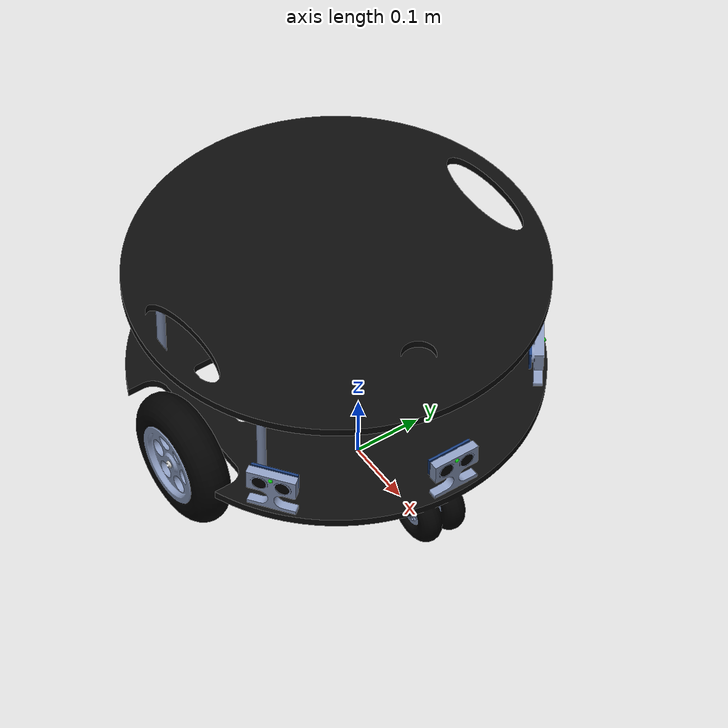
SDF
<?xml version='1.0'?>
<sdf version='1.6'>
  <model name='arlo_mejorado_precision_llantas'>

<!--    The base of the arlo robot base: lower and upper decks, and caster wheels (fixed)   -->
    <link name='link_base'>
      <inertial>
        <mass>10</mass>
        <inertia>
          <ixx>0.191043</ixx>
          <ixy>0</ixy>
          <ixz>0</ixz>
          <iyy>0.191043</iyy>
          <iyz>0</iyz>
          <izz>0.331905</izz>
        </inertia>
        <pose frame=''>0 0 0 0 0 0</pose>
      </inertial>
      <pose frame=''>-0.055242 0 0.153337 0 0 0</pose>
      <gravity>1</gravity>
      <self_collide>0</self_collide>
      <kinematic>0</kinematic>
      <enable_wind>0</enable_wind>
      <visual name='visual'>
        <pose frame=''>0 0 0 0 -0 0</pose>
        <geometry>
          <mesh>
            <uri>/home/antonio/catkin_ws/src/arlo_mejorado_precision_llantas/arlo_mejorado/models/arlodrive/meshes/arlo_base_altura_ok.dae</uri>
            <scale>1 1 1</scale>
          </mesh>
        </geometry>
        <transparency>0</transparency>
        <cast_shadows>1</cast_shadows>
      </visual>
      <collision name='collision'>
        <laser_retro>0</laser_retro>
        <max_contacts>10</max_contacts>
        <pose frame=''>0 0 0.070880 0 -0 0</pose>
        <geometry>
          <cylinder>
            <radius>0.288056</radius>
            <length>0.194</length>
          </cylinder>
        </geometry>
        <surface>
          <friction>
            <ode>
              <mu>1</mu>
              <mu2>1</mu2>
              <fdir1>0 0 0</fdir1>
              <slip1>0</slip1>
              <slip2>0</slip2>
            </ode>
            <torsional>
              <coefficient>1</coefficient>
              <patch_radius>0</patch_radius>
              <surface_radius>0</surface_radius>
              <use_patch_radius>1</use_patch_radius>
              <ode>
                <slip>0</slip>
              </ode>
            </torsional>
          </friction>
          <bounce>
            <restitution_coefficient>0</restitution_coefficient>
            <threshold>1e+06</threshold>
          </bounce>
          <contact>
            <collide_without_contact>0</collide_without_contact>
            <collide_without_contact_bitmask>1</collide_without_contact_bitmask>
            <collide_bitmask>1</collide_bitmask>
            <ode>
              <soft_cfm>0</soft_cfm>
              <soft_erp>0.2</soft_erp>
              <kp>1e+13</kp>
              <kd>1</kd>
              <max_vel>0.01</max_vel>
              <min_depth>0</min_depth>
            </ode>
            <bullet>
              <split_impulse>1</split_impulse>
              <split_impulse_penetration_threshold>-0.01</split_impulse_penetration_threshold>
              <soft_cfm>0</soft_cfm>
              <soft_erp>0.2</soft_erp>
              <kp>1e+13</kp>
              <kd>1</kd>
            </bullet>
          </contact>
        </surface>
      </collision>
    </link>

<!--    The caster wheel: an invisible sphere to simulate de real caster wheel. -->
    <link name='link_caster'>
      <inertial>
        <mass>0.8</mass>
        <inertia>
          <ixx>0.00043452</ixx>
          <ixy>0</ixy>
          <ixz>0</ixz>
          <iyy>0.00043452</iyy>
          <iyz>0</iyz>
          <izz>0.00043452</izz>
        </inertia>
        <pose frame=''>0 0 0 0 -0 0</pose>
      </inertial>
      <pose frame=''>0.167839 0 0.05 0 -0 0</pose>
      <gravity>1</gravity>
      <self_collide>0</self_collide>
      <kinematic>0</kinematic>
      <enable_wind>0</enable_wind>
      <visual name='visual'>
        <pose frame=''>0 0 0 0 0 0</pose>
        <geometry>
          <sphere>
            <radius>0.0466108</radius>
          </sphere>
        </geometry>
<!--        This makes the sphere invisible -->
        <transparency>1</transparency>
        <cast_shadows>1</cast_shadows>
      </visual>
      <collision name='collision'>
        <laser_retro>0</laser_retro>
        <max_contacts>10</max_contacts>
        <pose frame=''>0 0 0 0 -0 0</pose>
        <geometry>
          <sphere>
            <radius>0.046611</radius>
          </sphere>
        </geometry>
        <surface>
          <friction>
            <ode>
              <mu>1</mu>
              <mu2>1</mu2>
              <fdir1>0 0 0</fdir1>
              <slip1>0</slip1>
              <slip2>0</slip2>
            </ode>
            <torsional>
              <coefficient>1</coefficient>
              <patch_radius>0</patch_radius>
              <surface_radius>0</surface_radius>
              <use_patch_radius>1</use_patch_radius>
              <ode>
                <slip>0</slip>
              </ode>
            </torsional>
          </friction>
          <bounce>
            <restitution_coefficient>0</restitution_coefficient>
            <threshold>1e+06</threshold>
          </bounce>
          <contact>
            <collide_without_contact>0</collide_without_contact>
            <collide_without_contact_bitmask>1</collide_without_contact_bitmask>
            <collide_bitmask>1</collide_bitmask>
            <ode>
              <soft_cfm>0</soft_cfm>
              <soft_erp>0.2</soft_erp>
              <kp>1e+13</kp>
              <kd>1</kd>
              <max_vel>0.01</max_vel>
              <min_depth>0</min_depth>
            </ode>
            <bullet>
              <split_impulse>1</split_impulse>
              <split_impulse_penetration_threshold>-0.01</split_impulse_penetration_threshold>
              <soft_cfm>0</soft_cfm>
              <soft_erp>0.2</soft_erp>
              <kp>1e+13</kp>
              <kd>1</kd>
            </bullet>
          </contact>
        </surface>
      </collision>
    </link>

<!--    The back caster wheel: an invisible sphere to simulate de real caster wheel. -->
    <link name='link_caster_back'>
      <inertial>
        <mass>0.8</mass>
        <inertia>
          <ixx>0.00043452</ixx>
          <ixy>0</ixy>
          <ixz>0</ixz>
          <iyy>0.00043452</iyy>
          <iyz>0</iyz>
          <izz>0.00043452</izz>
        </inertia>
        <pose frame=''>0 0 0 0 -0 0</pose>
      </inertial>
      <pose frame=''>-0.278 0 0.05 0 -0 0</pose>
      <gravity>1</gravity>
      <self_collide>0</self_collide>
      <kinematic>0</kinematic>
      <enable_wind>0</enable_wind>
      <visual name='visual'>
        <pose frame=''>0 0 0 0 0 0</pose>
        <geometry>
          <sphere>
            <radius>0.0466108</radius>
          </sphere>
        </geometry>
<!--        This makes the sphere invisible -->
        <transparency>1</transparency>
        <cast_shadows>1</cast_shadows>
      </visual>
      <collision name='collision'>
        <laser_retro>0</laser_retro>
        <max_contacts>10</max_contacts>
        <pose frame=''>0 0 0 0 -0 0</pose>
        <geometry>
          <sphere>
            <radius>0.046611</radius>
          </sphere>
        </geometry>
        <surface>
          <friction>
            <ode>
              <mu>1</mu>
              <mu2>1</mu2>
              <fdir1>0 0 0</fdir1>
              <slip1>0</slip1>
              <slip2>0</slip2>
            </ode>
            <torsional>
              <coefficient>1</coefficient>
              <patch_radius>0</patch_radius>
              <surface_radius>0</surface_radius>
              <use_patch_radius>1</use_patch_radius>
              <ode>
                <slip>0</slip>
              </ode>
            </torsional>
          </friction>
          <bounce>
            <restitution_coefficient>0</restitution_coefficient>
            <threshold>1e+06</threshold>
          </bounce>
          <contact>
            <collide_without_contact>0</collide_without_contact>
            <collide_without_contact_bitmask>1</collide_without_contact_bitmask>
            <collide_bitmask>1</collide_bitmask>
            <ode>
              <soft_cfm>0</soft_cfm>
              <soft_erp>0.2</soft_erp>
              <kp>1e+13</kp>
              <kd>1</kd>
              <max_vel>0.01</max_vel>
              <min_depth>0</min_depth>
            </ode>
            <bullet>
              <split_impulse>1</split_impulse>
              <split_impulse_penetration_threshold>-0.01</split_impulse_penetration_threshold>
              <soft_cfm>0</soft_cfm>
              <soft_erp>0.2</soft_erp>
              <kp>1e+13</kp>
              <kd>1</kd>
            </bullet>
          </contact>
        </surface>
      </collision>
    </link>

<!--    The left wheel of the base-->
    <link name='link_wheel_left'>
      <inertial>
        <mass>1</mass>
        <inertia>
          <ixx>0.166667</ixx>
          <ixy>0</ixy>
          <ixz>0</ixz>
          <iyy>0.166667</iyy>
          <iyz>0</iyz>
          <izz>0.166667</izz>
        </inertia>
        <pose frame=''>0 0 0 0 -0 0</pose>
      </inertial>
      <pose frame=''>-0.053 0.251767 0.0978 0 -0 0</pose>
      <gravity>1</gravity>
      <self_collide>0</self_collide>
      <kinematic>0</kinematic>
      <enable_wind>0</enable_wind>
      <visual name='visual'>
        <pose frame=''>0 0 0 0 -0 0</pose>
        <geometry>
          <mesh>
            <uri>/home/antonio/catkin_ws/src/arlo_mejorado_precision_llantas/arlo_mejorado/models/arlodrive/meshes/arlo_wheel_mejorado.dae</uri>
            <scale>1 1 1</scale>
          </mesh>
        </geometry>
        <transparency>0</transparency>
        <cast_shadows>1</cast_shadows>
      </visual>
      <collision name='collision'>
        <laser_retro>0</laser_retro>
        <max_contacts>10</max_contacts>
        <pose frame=''>0 0 0 0 -0 0</pose>
        <geometry>
          <mesh>
            <uri>/home/antonio/catkin_ws/src/arlo_mejorado_precision_llantas/arlo_mejorado/models/arlodrive/meshes/arlo_wheel_mejorado.dae</uri>
            <scale>1 1 1</scale>
          </mesh>
        </geometry>
        <surface>
          <friction>
            <ode>
              <mu>1</mu>
              <mu2>1</mu2>
              <fdir1>0 0 0</fdir1>
              <slip1>0</slip1>
              <slip2>0</slip2>
            </ode>
            <torsional>
              <coefficient>1</coefficient>
              <patch_radius>0</patch_radius>
              <surface_radius>0</surface_radius>
              <use_patch_radius>1</use_patch_radius>
              <ode>
                <slip>0</slip>
              </ode>
            </torsional>
          </friction>
          <bounce>
            <restitution_coefficient>0</restitution_coefficient>
            <threshold>1e+06</threshold>
          </bounce>
          <contact>
            <collide_without_contact>0</collide_without_contact>
            <collide_without_contact_bitmask>1</collide_without_contact_bitmask>
            <collide_bitmask>1</collide_bitmask>
            <ode>
              <soft_cfm>0</soft_cfm>
              <soft_erp>0.2</soft_erp>
              <kp>1e+13</kp>
              <kd>1</kd>
              <max_vel>0.01</max_vel>
              <min_depth>0</min_depth>
            </ode>
            <bullet>
              <split_impulse>1</split_impulse>
              <split_impulse_penetration_threshold>-0.01</split_impulse_penetration_threshold>
              <soft_cfm>0</soft_cfm>
              <soft_erp>0.2</soft_erp>
              <kp>1e+13</kp>
              <kd>1</kd>
            </bullet>
          </contact>
        </surface>
      </collision>
    </link>

<!--    The right wheel of the base -->
    <link name='link_wheel_right'>
      <inertial>
        <mass>1</mass>
        <inertia>
          <ixx>0.166667</ixx>
          <ixy>0</ixy>
          <ixz>0</ixz>
          <iyy>0.166667</iyy>
          <iyz>0</iyz>
          <izz>0.166667</izz>
        </inertia>
        <pose frame=''>0 0 0 0 -0 0</pose>
      </inertial>
      <pose frame=''>-0.053 -0.251767 0.0978 0 0 -3.13728</pose>
      <gravity>1</gravity>
      <self_collide>0</self_collide>
      <kinematic>0</kinematic>
      <enable_wind>0</enable_wind>
      <visual name='visual'>
        <pose frame=''>0 0 0 0 -0 0</pose>
        <geometry>
          <mesh>
            <uri>/home/antonio/catkin_ws/src/arlo_mejorado_precision_llantas/arlo_mejorado/models/arlodrive/meshes/arlo_wheel_mejorado.dae</uri>
            <scale>1 1 1</scale>
          </mesh>
        </geometry>
        <transparency>0</transparency>
        <cast_shadows>1</cast_shadows>
        <material>
          <shader type='pixel'/>
          <emissive>0 0 0 1</emissive>
        </material>
      </visual>
      <collision name='collision'>
        <laser_retro>0</laser_retro>
        <max_contacts>10</max_contacts>
        <pose frame=''>0 0 0 0 -0 0</pose>
        <geometry>
          <mesh>
            <uri>/home/antonio/catkin_ws/src/arlo_mejorado_precision_llantas/arlo_mejorado/models/arlodrive/meshes/arlo_wheel_mejorado.dae</uri>
            <scale>1 1 1</scale>
          </mesh>
        </geometry>
        <surface>
          <friction>
            <ode>
              <mu>1</mu>
              <mu2>1</mu2>
              <fdir1>0 0 0</fdir1>
              <slip1>0</slip1>
              <slip2>0</slip2>
            </ode>
            <torsional>
              <coefficient>1</coefficient>
              <patch_radius>0</patch_radius>
              <surface_radius>0</surface_radius>
              <use_patch_radius>1</use_patch_radius>
              <ode>
                <slip>0</slip>
              </ode>
            </torsional>
          </friction>
          <bounce>
            <restitution_coefficient>0</restitution_coefficient>
            <threshold>1e+06</threshold>
          </bounce>
          <contact>
            <collide_without_contact>0</collide_without_contact>
            <collide_without_contact_bitmask>1</collide_without_contact_bitmask>
            <collide_bitmask>1</collide_bitmask>
            <ode>
              <soft_cfm>0</soft_cfm>
              <soft_erp>0.2</soft_erp>
              <kp>1e+13</kp>
              <kd>1</kd>
              <max_vel>0.01</max_vel>
              <min_depth>0</min_depth>
            </ode>
            <bullet>
              <split_impulse>1</split_impulse>
              <split_impulse_penetration_threshold>-0.01</split_impulse_penetration_threshold>
              <soft_cfm>0</soft_cfm>
              <soft_erp>0.2</soft_erp>
              <kp>1e+13</kp>
              <kd>1</kd>
            </bullet>
          </contact>
        </surface>
      </collision>
    </link>

<!--    The three PING))) ultrasonic distance sensors (these are fixed with with a JOINT. -->
    <link name='link_sensor_center'>
      <gravity>0</gravity>
      <inertial>
        <mass>0.01</mass>
      </inertial>
      <pose frame=''>0.218715 0 0.17346 0 0 0</pose>
      <sensor name='head_hokuyo_sensor' type='ray'>
        <pose frame=''>0 0 0.0125 3.14159 0 0</pose>
        <visualize>0</visualize>
        <update_rate>30</update_rate>
        <ray>
          <noise>
            <type>gaussian</type>
            <mean>0</mean>
            <stddev>0.001</stddev>
          </noise>
          <scan>
            <horizontal>
              <samples>32</samples>
              <resolution>1</resolution>
              <min_angle>-0.4</min_angle>
              <max_angle>0.4</max_angle>
            </horizontal>
            <vertical>
              <samples>1</samples>
              <min_angle>0</min_angle>
              <max_angle>0</max_angle>
            </vertical>
          </scan>
          <range>
            <min>0.05</min>
            <max>3</max>
            <resolution>0.02</resolution>
          </range>
        </ray>
        <plugin name="gazebo_ros_head_hokuyo_controller" filename="libgazebo_ros_laser.so">
           <topicName>/arlo/laser/scan_center</topicName>
           <frameName>link_sensor_center</frameName>
        </plugin>
      </sensor>
      <visual name='visual'>
        <pose frame=''>0 0 0 0 -0 0</pose>
        <geometry>
          <mesh>
            <uri>/home/antonio/catkin_ws/src/arlo_mejorado_precision_llantas/arlo_mejorado/models/arlodrive/meshes/arlo_sensor.dae</uri>
            <scale>1 1 1</scale>
          </mesh>
        </geometry>
      </visual>
      <collision name='collision'>
        <pose frame=''>0 0 0 0 0 0</pose>
        <geometry>
          <mesh>
            <uri>/home/antonio/catkin_ws/src/arlo_mejorado_precision_llantas/arlo_mejorado/models/arlodrive/meshes/arlo_sensor.dae</uri>
            <scale>1 1 1</scale>
          </mesh>
        </geometry>
      </collision>
    </link>

    <link name='link_sensor_back'>
      <gravity>0</gravity>
      <inertial>
        <mass>0.01</mass>
      </inertial>
      <pose frame=''>-0.325 0 0.17346 0 0 3.14159</pose>
      <sensor name='head_hokuyo_sensor' type='ray'>
        <pose frame=''>0 0 0.0125 3.14159 0 0</pose>
        <visualize>0</visualize>
        <update_rate>30</update_rate>
        <ray>
          <noise>
            <type>gaussian</type>
            <mean>0</mean>
            <stddev>0.001</stddev>
          </noise>
          <scan>
            <horizontal>
              <samples>32</samples>
              <resolution>1</resolution>
              <min_angle>-0.4</min_angle>
              <max_angle>0.4</max_angle>
            </horizontal>
            <vertical>
              <samples>1</samples>
              <min_angle>0</min_angle>
              <max_angle>0</max_angle>
            </vertical>
          </scan>
          <range>
            <min>0.05</min>
            <max>3</max>
            <resolution>0.02</resolution>
          </range>
        </ray>
        <plugin name="gazebo_ros_head_hokuyo_controller" filename="libgazebo_ros_laser.so">
           <topicName>/arlo/laser/scan_back</topicName>
           <frameName>link_sensor_back</frameName>
        </plugin>
      </sensor>
      <visual name='visual'>
        <pose frame=''>0 0 0 0 -0 0</pose>
        <geometry>
          <mesh>
            <uri>/home/antonio/catkin_ws/src/arlo_mejorado_precision_llantas/arlo_mejorado/models/arlodrive/meshes/arlo_sensor.dae</uri>
            <scale>1 1 1</scale>
          </mesh>
        </geometry>
      </visual>
      <collision name='collision'>
        <pose frame=''>0 0 0 0 0 0</pose>
        <geometry>
          <mesh>
            <uri>/home/antonio/catkin_ws/src/arlo_mejorado_precision_llantas/arlo_mejorado/models/arlodrive/meshes/arlo_sensor.dae</uri>
            <scale>1 1 1</scale>
          </mesh>
        </geometry>
      </collision>
    </link>

    <link name='link_sensor_right'>
      <gravity>0</gravity>
      <inertial>
        <mass>0.01</mass>
      </inertial>
      <pose frame=''>0.113899 -0.214883 0.17346 0 0 -0.927292</pose>
      <sensor name='head_hokuyo_sensor' type='ray'>
        <pose frame=''>0 0 0.0125 3.14159 0 0</pose>
        <visualize>0</visualize>
        <update_rate>30</update_rate>
        <ray>
          <noise>
            <type>gaussian</type>
            <mean>0</mean>
            <stddev>0.001</stddev>
          </noise>
          <scan>
            <horizontal>
              <samples>32</samples>
              <resolution>1</resolution>
              <min_angle>-0.4</min_angle>
              <max_angle>0.4</max_angle>
            </horizontal>
            <vertical>
              <samples>1</samples>
              <min_angle>0</min_angle>
              <max_angle>0</max_angle>
            </vertical>
          </scan>
          <range>
            <min>0.05</min>
            <max>3</max>
            <resolution>0.02</resolution>
          </range>
        </ray>
        <plugin name="gazebo_ros_head_hokuyo_controller" filename="libgazebo_ros_laser.so">
           <topicName>/arlo/laser/scan_right</topicName>
           <frameName>link_sensor_right</frameName>
        </plugin>
      </sensor>
      <visual name='visual'>
        <pose frame=''>0 0 0 0 0 0</pose>
        <geometry>
          <mesh>
            <uri>/home/antonio/catkin_ws/src/arlo_mejorado_precision_llantas/arlo_mejorado/models/arlodrive/meshes/arlo_sensor.dae</uri>
            <scale>1 1 1</scale>
          </mesh>
        </geometry>
      </visual>
      <collision name='collision'>
        <pose frame=''>0 0 0 0 0 0</pose>
        <geometry>
          <mesh>
            <uri>/home/antonio/catkin_ws/src/arlo_mejorado_precision_llantas/arlo_mejorado/models/arlodrive/meshes/arlo_sensor.dae</uri>
            <scale>1 1 1</scale>
          </mesh>
        </geometry>
      </collision>
    </link>

    <link name='link_sensor_left'>
      <gravity>0</gravity>
      <inertial>
        <mass>0.01</mass>
      </inertial>
      <pose frame=''>0.113899 0.214883 0.17346 0 0 0.927292</pose>
      <sensor name='head_hokuyo_sensor' type='ray'>
        <pose frame=''>0 0 0.0125 3.14159 0 0</pose>
        <visualize>0</visualize>
        <update_rate>30</update_rate>
        <ray>
          <noise>
            <type>gaussian</type>
            <mean>0</mean>
            <stddev>0.001</stddev>
          </noise>
          <scan>
            <horizontal>
              <samples>32</samples>
              <resolution>1</resolution>
              <min_angle>-0.4</min_angle>
              <max_angle>0.4</max_angle>
            </horizontal>
            <vertical>
              <samples>1</samples>
              <min_angle>0</min_angle>
              <max_angle>0</max_angle>
            </vertical>
          </scan>
          <range>
            <min>0.05</min>
            <max>3</max>
            <resolution>0.02</resolution>
          </range>
        </ray>
        <plugin name="gazebo_ros_head_hokuyo_controller" filename="libgazebo_ros_laser.so">
           <topicName>/arlo/laser/scan_left</topicName>
           <frameName>link_sensor_left</frameName>
        </plugin>
      </sensor>
      <visual name='visual'>
        <pose frame=''>0 0 0 0 -0 0</pose>
        <geometry>
          <mesh>
            <uri>/home/antonio/catkin_ws/src/arlo_mejorado_precision_llantas/arlo_mejorado/models/arlodrive/meshes/arlo_sensor.dae</uri>
            <scale>1 1 1</scale>
          </mesh>
        </geometry>
      </visual>
      <collision name='collision'>
        <pose frame=''>0 0 0 0 -0 0</pose>
        <geometry>
          <mesh>
            <uri>/home/antonio/catkin_ws/src/arlo_mejorado_precision_llantas/arlo_mejorado/models/arlodrive/meshes/arlo_sensor.dae</uri>
            <scale>1 1 1</scale>
          </mesh>
        </geometry>
      </collision>
    </link>

<!--Joints for keeping fixed the three sonar sensors.    -->
    <joint name='link_base_JOINT_sensor_center' type='fixed'>
      <parent>link_base</parent>
      <child>link_sensor_center</child>
      <pose frame=''>0 0 0 0 -0 0</pose>
      <physics>
        <ode>
          <limit>
            <cfm>0</cfm>
            <erp>0.2</erp>
          </limit>
          <suspension>
            <cfm>0</cfm>
            <erp>0.2</erp>
          </suspension>
        </ode>
      </physics>
    </joint>
    <joint name='link_base_JOINT_sensor_back' type='fixed'>
      <parent>link_base</parent>
      <child>link_sensor_back</child>
      <pose frame=''>0 0 0 0 -0 0</pose>
      <physics>
        <ode>
          <limit>
            <cfm>0</cfm>
            <erp>0.2</erp>
          </limit>
          <suspension>
            <cfm>0</cfm>
            <erp>0.2</erp>
          </suspension>
        </ode>
      </physics>
    </joint>
    <joint name='link_base_JOINT_sensor_right' type='fixed'>
      <parent>link_base</parent>
      <child>link_sensor_right</child>
      <pose frame=''>0 0 0 0 -0 0</pose>
      <physics>
        <ode>
          <limit>
            <cfm>0</cfm>
            <erp>0.2</erp>
          </limit>
          <suspension>
            <cfm>0</cfm>
            <erp>0.2</erp>
          </suspension>
        </ode>
      </physics>
    </joint>
    <joint name='link_base_JOINT_sensor_left' type='fixed'>
      <parent>link_base</parent>
      <child>link_sensor_left</child>
      <pose frame=''>0 0 0 0 -0 0</pose>
      <physics>
        <ode>
          <limit>
            <cfm>0</cfm>
            <erp>0.2</erp>
          </limit>
          <suspension>
            <cfm>0</cfm>
            <erp>0.2</erp>
          </suspension>
        </ode>
      </physics>
    </joint>
    <joint name='link_base_JOINT_caster' type='ball'>
      <parent>link_base</parent>
      <child>link_caster</child>
      <pose frame=''>0 0 0 0 -0 0</pose>
      <physics>
        <ode>
          <limit>
            <cfm>0</cfm>
            <erp>0.2</erp>
          </limit>
          <suspension>
            <cfm>0</cfm>
            <erp>0.2</erp>
          </suspension>
        </ode>
      </physics>
    </joint>
    <joint name='link_base_JOINT_caster_back' type='ball'>
      <parent>link_base</parent>
      <child>link_caster_back</child>
      <pose frame=''>0 0 0 0 -0 0</pose>
      <physics>
        <ode>
          <limit>
            <cfm>0</cfm>
            <erp>0.2</erp>
          </limit>
          <suspension>
            <cfm>0</cfm>
            <erp>0.2</erp>
          </suspension>
        </ode>
      </physics>
    </joint>
    <joint name='link_base_JOINT_wheel_left' type='revolute'>
      <parent>link_base</parent>
      <child>link_wheel_left</child>
      <pose frame=''>0 0 0 0 -0 0</pose>
      <axis>
        <xyz>0 1 0</xyz>
        <use_parent_model_frame>0</use_parent_model_frame>
        <limit>
          <lower>-1.79769e+308</lower>
          <upper>1.79769e+308</upper>
          <effort>-1</effort>
          <velocity>-1</velocity>
        </limit>
        <dynamics>
          <spring_reference>0</spring_reference>
          <spring_stiffness>0</spring_stiffness>
          <damping>0</damping>
          <friction>0</friction>
        </dynamics>
      </axis>
      <physics>
        <ode>
          <limit>
            <cfm>0</cfm>
            <erp>0.2</erp>
          </limit>
          <suspension>
            <cfm>0</cfm>
            <erp>0.2</erp>
          </suspension>
        </ode>
      </physics>
    </joint>
    <joint name='link_base_JOINT_wheel_right' type='revolute'>
      <parent>link_base</parent>
      <child>link_wheel_right</child>
      <pose frame=''>0 0 0 0 -0 0</pose>
      <axis>
        <xyz>0 -1 0</xyz>
        <use_parent_model_frame>0</use_parent_model_frame>
        <limit>
          <lower>-1.79769e+308</lower>
          <upper>1.79769e+308</upper>
          <effort>-1</effort>
          <velocity>-1</velocity>
        </limit>
        <dynamics>
          <spring_reference>0</spring_reference>
          <spring_stiffness>0</spring_stiffness>
          <damping>0</damping>
          <friction>0</friction>
        </dynamics>
      </axis>
      <physics>
        <ode>
          <limit>
            <cfm>0</cfm>
            <erp>0.2</erp>
          </limit>
          <suspension>
            <cfm>0</cfm>
            <erp>0.2</erp>
          </suspension>
        </ode>
      </physics>
    </joint>
    <static>0</static>
    <allow_auto_disable>1</allow_auto_disable>

    <plugin name="differential_drive_controller" filename="libgazebo_ros_diff_drive.so">
        <alwaysOn>true</alwaysOn>
        <legacyMode>false</legacyMode>
        <updateRate>20</updateRate>
        <leftJoint>link_base_JOINT_wheel_left</leftJoint>
        <rightJoint>link_base_JOINT_wheel_right</rightJoint>
        <wheelSeparation>0.5</wheelSeparation>
        <wheelDiameter>0.096</wheelDiameter>
        <torque>10</torque>
        <commandTopic>cmd_vel</commandTopic>
        <odometryTopic>odom</odometryTopic>
        <odometryFrame>odom</odometryFrame>
        <robotBaseFrame>base_footprint</robotBaseFrame>
    </plugin>

  </model>
</sdf>
